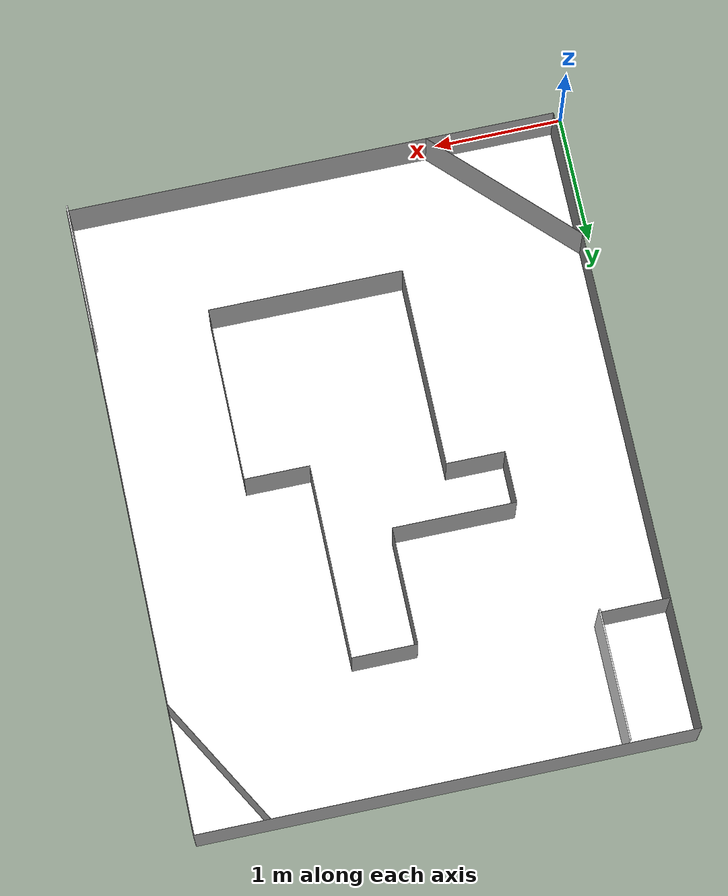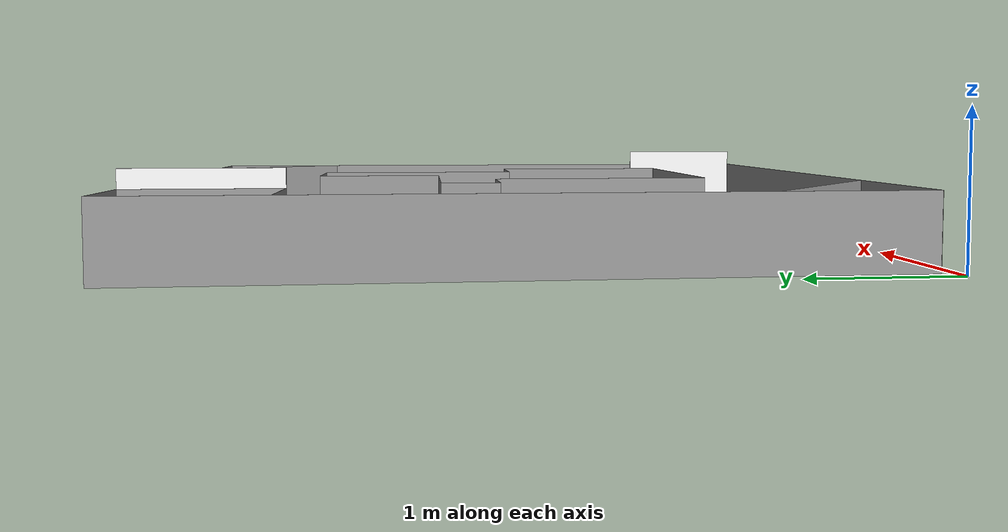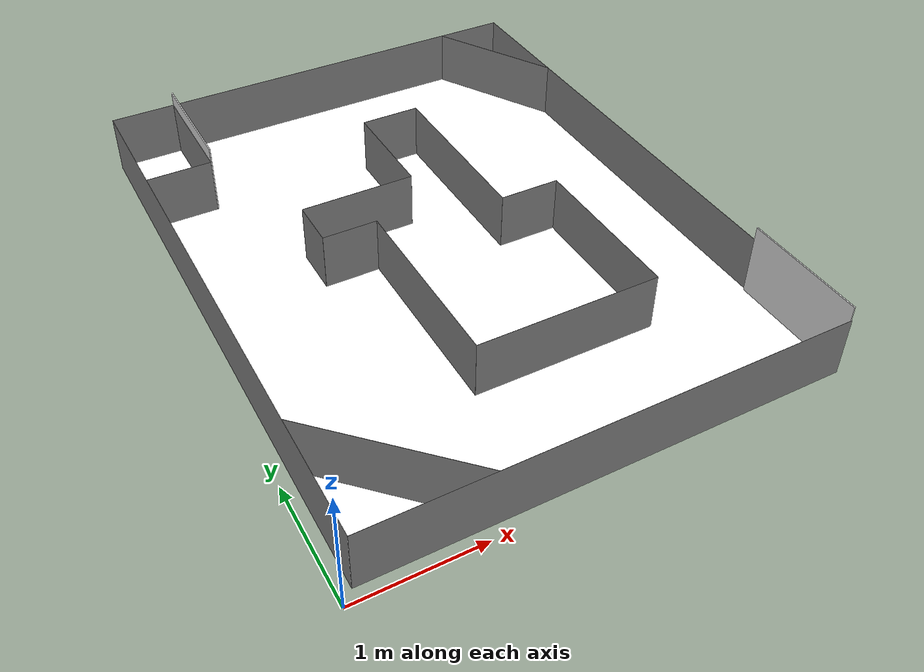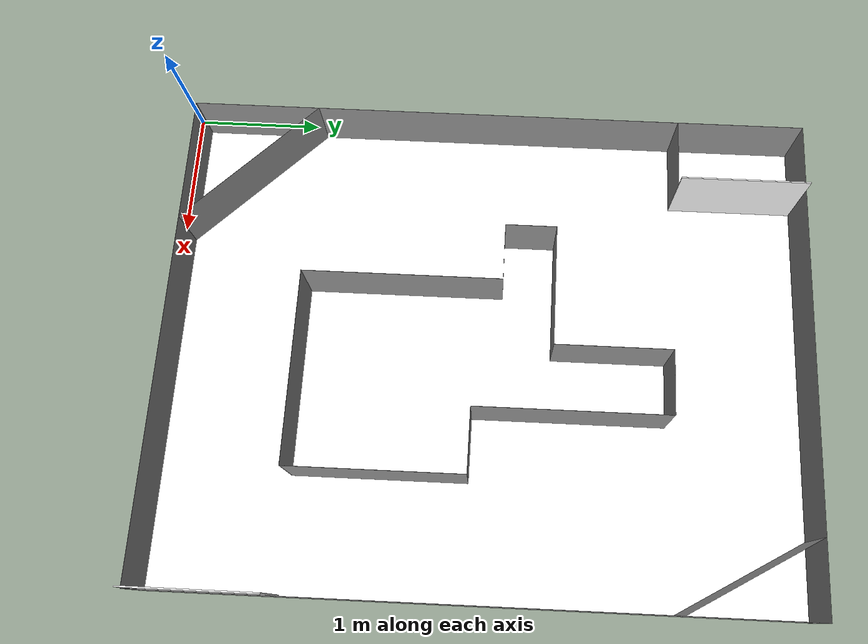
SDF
<?xml version='1.0'?>
<sdf version='1.6'>
  <model name='yaofang'>
    <pose>1.99923 2.54773 0 0 -0 0</pose>
    <link name='Wall_0'>
      <collision name='Wall_0_Collision'>
        <geometry>
          <box>
            <size>3.8 0.001 0.5</size>
          </box>
        </geometry>
        <pose>0 0 0.25 0 -0 0</pose>
      </collision>
      <visual name='Wall_0_Visual'>
        <pose>0 0 0.25 0 -0 0</pose>
        <geometry>
          <box>
            <size>3.8 0.001 0.5</size>
          </box>
        </geometry>
        <material>
          <script>
            <uri>file://media/materials/scripts/gazebo.material</uri>
            <name>Gazebo/Grey</name>
          </script>
          <ambient>1 1 1 1</ambient>
        </material>
        <meta>
          <layer>0</layer>
        </meta>
      </visual>
      <pose>0.000769 2.45 0 0 -0 0</pose>
    </link>
    <link name='Wall_1'>
      <collision name='Wall_1_Collision'>
        <geometry>
          <box>
            <size>4.9 0.001 0.5</size>
          </box>
        </geometry>
        <pose>0 0 0.25 0 -0 0</pose>
      </collision>
      <visual name='Wall_1_Visual'>
        <pose>0 0 0.25 0 -0 0</pose>
        <geometry>
          <box>
            <size>4.9 0.001 0.5</size>
          </box>
        </geometry>
        <material>
          <script>
            <uri>file://media/materials/scripts/gazebo.material</uri>
            <name>Gazebo/Grey</name>
          </script>
          <ambient>1 1 1 1</ambient>
        </material>
        <meta>
          <layer>0</layer>
        </meta>
      </visual>
      <pose>1.9 0.002269 0 0 -0 -1.5708</pose>
    </link>
    <link name='RecognitionBoard_1'>
      <collision name='RecognitionBoard_1_Collision'>
        <geometry>
          <box>
            <!-- keep thin (~0.01); thick board breaks QR frame detect at oblique view -->
            <size>1 0.01 0.625</size>
          </box>
        </geometry>
        <pose>0 0 0.3125 0 -0 0</pose>
      </collision>
      <visual name='RecognitionBoard_1_Poster'>
        <pose>0 0 0.3125 0 -0 0</pose>
        <geometry>
          <box>
            <size>1 0.01 0.625</size>
          </box>
        </geometry>
        <material>
          <script>
            <uri>model://yaofang/materials/scripts</uri>
            <uri>model://yaofang/materials/textures</uri>
            <name>yaofang/RecognitionBoard</name>
          </script>
          <ambient>1 1 1 1</ambient>
          <diffuse>1 1 1 1</diffuse>
          <specular>0.1 0.1 0.1 1</specular>
          <emissive>0.85 0.85 0.85 1</emissive>
        </material>
        <cast_shadows>false</cast_shadows>
      </visual>
      <pose>1.8885 -1.95 0 0 -0 -1.5708</pose>
    </link>
    <link name='Wall_10'>
      <collision name='Wall_10_Collision'>
        <geometry>
          <box>
            <size>1 0.001 0.5</size>
          </box>
        </geometry>
        <pose>0 0 0.25 0 -0 0</pose>
      </collision>
      <visual name='Wall_10_Visual'>
        <pose>0 0 0.25 0 -0 0</pose>
        <geometry>
          <box>
            <size>1 0.001 0.5</size>
          </box>
        </geometry>
        <material>
          <script>
            <uri>file://media/materials/scripts/gazebo.material</uri>
            <name>Gazebo/Grey</name>
          </script>
          <ambient>1 1 1 1</ambient>
        </material>
        <meta>
          <layer>0</layer>
        </meta>
      </visual>
      <pose>-1.36 1.95 0 0 -0 1.5708</pose>
    </link>
    <link name='RecognitionBoard_10'>
      <collision name='RecognitionBoard_10_Collision'>
        <geometry>
          <box>
            <size>1 0.01 0.625</size>
          </box>
        </geometry>
        <pose>0 0 0.3125 0 -0 0</pose>
      </collision>
      <visual name='RecognitionBoard_10_Poster'>
        <pose>0 0 0.3125 0 -0 0</pose>
        <geometry>
          <box>
            <size>1 0.01 0.625</size>
          </box>
        </geometry>
        <material>
          <script>
            <uri>model://yaofang/materials/scripts</uri>
            <uri>model://yaofang/materials/textures</uri>
            <name>yaofang/RecognitionBoard_Wall10</name>
          </script>
          <ambient>1 1 1 1</ambient>
          <diffuse>1 1 1 1</diffuse>
          <specular>0.1 0.1 0.1 1</specular>
          <emissive>0.5 0.5 0.5 1</emissive>
        </material>
        <cast_shadows>false</cast_shadows>
      </visual>
      <pose>-1.3545 1.95 0 0 -0 1.5708</pose>
    </link>
    <link name='Wall_11'>
      <collision name='Wall_11_Collision'>
        <geometry>
          <box>
            <size>0.54 0.001 0.5</size>
          </box>
        </geometry>
        <pose>0 0 0.25 0 -0 0</pose>
      </collision>
      <visual name='Wall_11_Visual'>
        <pose>0 0 0.25 0 -0 0</pose>
        <geometry>
          <box>
            <size>0.54 0.001 0.5</size>
          </box>
        </geometry>
        <material>
          <script>
            <uri>file://media/materials/scripts/gazebo.material</uri>
            <name>Gazebo/Grey</name>
          </script>
          <ambient>1 1 1 1</ambient>
        </material>
        <meta>
          <layer>0</layer>
        </meta>
      </visual>
      <pose>-1.63 1.45 0 0 -0 0</pose>
    </link>
    <link name='Wall_13'>
      <collision name='Wall_13_Collision'>
        <geometry>
          <box>
            <size>1.5 0.001 0.5</size>
          </box>
        </geometry>
        <pose>0 0 0.25 0 -0 0</pose>
      </collision>
      <visual name='Wall_13_Visual'>
        <pose>0 0 0.25 0 -0 0</pose>
        <geometry>
          <box>
            <size>1.5 0.001 0.5</size>
          </box>
        </geometry>
        <material>
          <script>
            <uri>file://media/materials/scripts/gazebo.material</uri>
            <name>Gazebo/Grey</name>
          </script>
          <ambient>1 1 1 1</ambient>
        </material>
        <meta>
          <layer>0</layer>
        </meta>
      </visual>
      <pose>0.250769 -1.45 0 0 -0 0</pose>
    </link>
    <link name='Wall_14'>
      <collision name='Wall_14_Collision'>
        <geometry>
          <box>
            <size>1.35 0.001 0.5</size>
          </box>
        </geometry>
        <pose>0 0 0.25 0 -0 0</pose>
      </collision>
      <visual name='Wall_14_Visual'>
        <pose>0 0 0.25 0 -0 0</pose>
        <geometry>
          <box>
            <size>1.35 0.001 0.5</size>
          </box>
        </geometry>
        <material>
          <script>
            <uri>file://media/materials/scripts/gazebo.material</uri>
            <name>Gazebo/Grey</name>
          </script>
          <ambient>1 1 1 1</ambient>
        </material>
        <meta>
          <layer>0</layer>
        </meta>
      </visual>
      <pose>1.00077 -0.772731 0 0 -0 1.5708</pose>
    </link>
    <link name='Wall_15'>
      <collision name='Wall_15_Collision'>
        <geometry>
          <box>
            <size>0.5 0.001 0.5</size>
          </box>
        </geometry>
        <pose>0 0 0.25 0 -0 0</pose>
      </collision>
      <visual name='Wall_15_Visual'>
        <pose>0 0 0.25 0 -0 0</pose>
        <geometry>
          <box>
            <size>0.5 0.001 0.5</size>
          </box>
        </geometry>
        <material>
          <script>
            <uri>file://media/materials/scripts/gazebo.material</uri>
            <name>Gazebo/Grey</name>
          </script>
          <ambient>1 1 1 1</ambient>
        </material>
        <meta>
          <layer>0</layer>
        </meta>
      </visual>
      <pose>0.750769 -0.097731 0 0 -0 3.14159</pose>
    </link>
    <link name='Wall_16'>
      <collision name='Wall_16_Collision'>
        <geometry>
          <box>
            <size>1.5 0.001 0.5</size>
          </box>
        </geometry>
        <pose>0 0 0.25 0 -0 0</pose>
      </collision>
      <visual name='Wall_16_Visual'>
        <pose>0 0 0.25 0 -0 0</pose>
        <geometry>
          <box>
            <size>1.5 0.001 0.5</size>
          </box>
        </geometry>
        <material>
          <script>
            <uri>file://media/materials/scripts/gazebo.material</uri>
            <name>Gazebo/Grey</name>
          </script>
          <ambient>1 1 1 1</ambient>
        </material>
        <meta>
          <layer>0</layer>
        </meta>
      </visual>
      <pose>0.500769 0.652269 0 0 -0 1.5708</pose>
    </link>
    <link name='Wall_17'>
      <collision name='Wall_17_Collision'>
        <geometry>
          <box>
            <size>0.5 0.001 0.5</size>
          </box>
        </geometry>
        <pose>0 0 0.25 0 -0 0</pose>
      </collision>
      <visual name='Wall_17_Visual'>
        <pose>0 0 0.25 0 -0 0</pose>
        <geometry>
          <box>
            <size>0.5 0.001 0.5</size>
          </box>
        </geometry>
        <material>
          <script>
            <uri>file://media/materials/scripts/gazebo.material</uri>
            <name>Gazebo/Grey</name>
          </script>
          <ambient>1 1 1 1</ambient>
        </material>
        <meta>
          <layer>0</layer>
        </meta>
      </visual>
      <pose>0.250769 1.402269 0 0 -0 3.14159</pose>
    </link>
    <link name='Wall_18'>
      <collision name='Wall_18_Collision'>
        <geometry>
          <box>
            <size>0.902269 0.001 0.5</size>
          </box>
        </geometry>
        <pose>0 0 0.25 0 -0 0</pose>
      </collision>
      <visual name='Wall_18_Visual'>
        <pose>0 0 0.25 0 -0 0</pose>
        <geometry>
          <box>
            <size>0.902269 0.001 0.5</size>
          </box>
        </geometry>
        <material>
          <script>
            <uri>file://media/materials/scripts/gazebo.material</uri>
            <name>Gazebo/Grey</name>
          </script>
          <ambient>1 1 1 1</ambient>
        </material>
        <meta>
          <layer>0</layer>
        </meta>
      </visual>
      <pose>0.000769 0.951134 0 0 -0 -1.5708</pose>
    </link>
    <link name='Wall_19'>
      <collision name='Wall_19_Collision'>
        <geometry>
          <box>
            <size>0.95 0.001 0.5</size>
          </box>
        </geometry>
        <pose>0 0 0.25 0 -0 0</pose>
      </collision>
      <visual name='Wall_19_Visual'>
        <pose>0 0 0.25 0 -0 0</pose>
        <geometry>
          <box>
            <size>0.95 0.001 0.5</size>
          </box>
        </geometry>
        <material>
          <script>
            <uri>file://media/materials/scripts/gazebo.material</uri>
            <name>Gazebo/Grey</name>
          </script>
          <ambient>1 1 1 1</ambient>
        </material>
        <meta>
          <layer>0</layer>
        </meta>
      </visual>
      <pose>-0.474231 0.5 0 0 -0 3.14159</pose>
    </link>
    <link name='Wall_2'>
      <collision name='Wall_2_Collision'>
        <geometry>
          <box>
            <size>3.8 0.001 0.5</size>
          </box>
        </geometry>
        <pose>0 0 0.25 0 -0 0</pose>
      </collision>
      <visual name='Wall_2_Visual'>
        <pose>0 0 0.25 0 -0 0</pose>
        <geometry>
          <box>
            <size>3.8 0.001 0.5</size>
          </box>
        </geometry>
        <material>
          <script>
            <uri>file://media/materials/scripts/gazebo.material</uri>
            <name>Gazebo/Grey</name>
          </script>
          <ambient>1 1 1 1</ambient>
        </material>
        <meta>
          <layer>0</layer>
        </meta>
      </visual>
      <pose>0.000769 -2.45 0 0 -0 3.14159</pose>
    </link>
    <link name='Wall_20'>
      <collision name='Wall_20_Collision'>
        <geometry>
          <box>
            <size>0.4 0.001 0.5</size>
          </box>
        </geometry>
        <pose>0 0 0.25 0 -0 0</pose>
      </collision>
      <visual name='Wall_20_Visual'>
        <pose>0 0 0.25 0 -0 0</pose>
        <geometry>
          <box>
            <size>0.4 0.001 0.5</size>
          </box>
        </geometry>
        <material>
          <script>
            <uri>file://media/materials/scripts/gazebo.material</uri>
            <name>Gazebo/Grey</name>
          </script>
          <ambient>1 1 1 1</ambient>
        </material>
        <meta>
          <layer>0</layer>
        </meta>
      </visual>
      <pose>-0.949231 0.3 0 0 -0 -1.5708</pose>
    </link>
    <link name='Wall_21'>
      <collision name='Wall_21_Collision'>
        <geometry>
          <box>
            <size>0.45 0.001 0.5</size>
          </box>
        </geometry>
        <pose>0 0 0.25 0 -0 0</pose>
      </collision>
      <visual name='Wall_21_Visual'>
        <pose>0 0 0.25 0 -0 0</pose>
        <geometry>
          <box>
            <size>0.45 0.001 0.5</size>
          </box>
        </geometry>
        <material>
          <script>
            <uri>file://media/materials/scripts/gazebo.material</uri>
            <name>Gazebo/Grey</name>
          </script>
          <ambient>1 1 1 1</ambient>
        </material>
        <meta>
          <layer>0</layer>
        </meta>
      </visual>
      <pose>-0.724231 0.1 0 0 -0 0</pose>
    </link>
    <link name='Wall_22'>
      <collision name='Wall_22_Collision'>
        <geometry>
          <box>
            <size>1.55 0.001 0.5</size>
          </box>
        </geometry>
        <pose>0 0 0.25 0 -0 0</pose>
      </collision>
      <visual name='Wall_22_Visual'>
        <pose>0 0 0.25 0 -0 0</pose>
        <geometry>
          <box>
            <size>1.55 0.001 0.5</size>
          </box>
        </geometry>
        <material>
          <script>
            <uri>file://media/materials/scripts/gazebo.material</uri>
            <name>Gazebo/Grey</name>
          </script>
          <ambient>1 1 1 1</ambient>
        </material>
        <meta>
          <layer>0</layer>
        </meta>
      </visual>
      <pose>-0.499231 -0.675 0 0 -0 -1.5708</pose>
    </link>
    <link name='Wall_3'>
      <collision name='Wall_3_Collision'>
        <geometry>
          <box>
            <size>4.9 0.001 0.5</size>
          </box>
        </geometry>
        <pose>0 0 0.25 0 -0 0</pose>
      </collision>
      <visual name='Wall_3_Visual'>
        <pose>0 0 0.25 0 -0 0</pose>
        <geometry>
          <box>
            <size>4.9 0.001 0.5</size>
          </box>
        </geometry>
        <material>
          <script>
            <uri>file://media/materials/scripts/gazebo.material</uri>
            <name>Gazebo/Grey</name>
          </script>
          <ambient>1 1 1 1</ambient>
        </material>
        <meta>
          <layer>0</layer>
        </meta>
      </visual>
      <pose>-1.9 0.002269 0 0 -0 1.5708</pose>
    </link>
    <link name='Wall_6'>
      <collision name='Wall_6_Collision'>
        <geometry>
          <box>
            <size>1.414214 0.001 0.5</size>
          </box>
        </geometry>
        <pose>0 0 0.25 0 -0 0</pose>
      </collision>
      <visual name='Wall_6_Visual'>
        <pose>0 0 0.25 0 -0 0</pose>
        <geometry>
          <box>
            <size>1.414214 0.001 0.5</size>
          </box>
        </geometry>
        <material>
          <script>
            <uri>file://media/materials/scripts/gazebo.material</uri>
            <name>Gazebo/Grey</name>
          </script>
          <ambient>1 1 1 1</ambient>
        </material>
        <meta>
          <layer>0</layer>
        </meta>
      </visual>
      <pose>-1.4 -1.95 0 0 -0 -0.785398</pose>
    </link>
    <link name='Wall_8'>
      <collision name='Wall_8_Collision'>
        <geometry>
          <box>
            <size>1.154701 0.001 0.5</size>
          </box>
        </geometry>
        <pose>0 0 0.25 0 -0 0</pose>
      </collision>
      <visual name='Wall_8_Visual'>
        <pose>0 0 0.25 0 -0 0</pose>
        <geometry>
          <box>
            <size>1.154701 0.001 0.5</size>
          </box>
        </geometry>
        <material>
          <script>
            <uri>file://media/materials/scripts/gazebo.material</uri>
            <name>Gazebo/Grey</name>
          </script>
          <ambient>1 1 1 1</ambient>
        </material>
        <meta>
          <layer>0</layer>
        </meta>
      </visual>
      <pose>1.611325 1.95 0 0 -0 -1.047198</pose>
    </link>
    <link name='Floor_0'>
      <collision name='Floor_0_Collision'>
        <geometry>
          <box>
            <size>3.8 4.9 0.02</size>
          </box>
        </geometry>
        <pose>0 0 0.01 0 -0 0</pose>
      </collision>
      <visual name='Floor_0_Visual'>
        <pose>0 0 0.01 0 -0 0</pose>
        <geometry>
          <box>
            <size>3.8 4.9 0.02</size>
          </box>
        </geometry>
        <material>
          <script>
            <uri>model://yaofang/materials/scripts</uri>
            <uri>model://yaofang/materials/textures</uri>
            <name>yaofang/Floor</name>
          </script>
          <ambient>1 1 1 1</ambient>
        </material>
        <meta>
          <layer>0</layer>
        </meta>
      </visual>
      <pose>0.000769 0.000000 0 0 -0 0</pose>
    </link>
    <static>1</static>
  </model>
</sdf>
